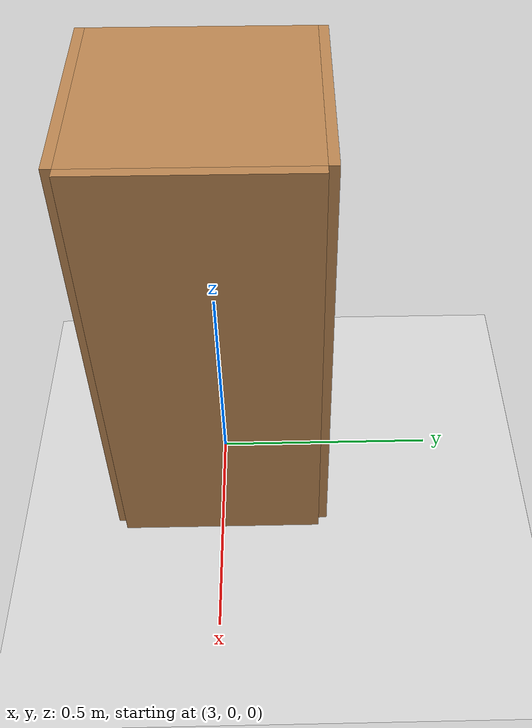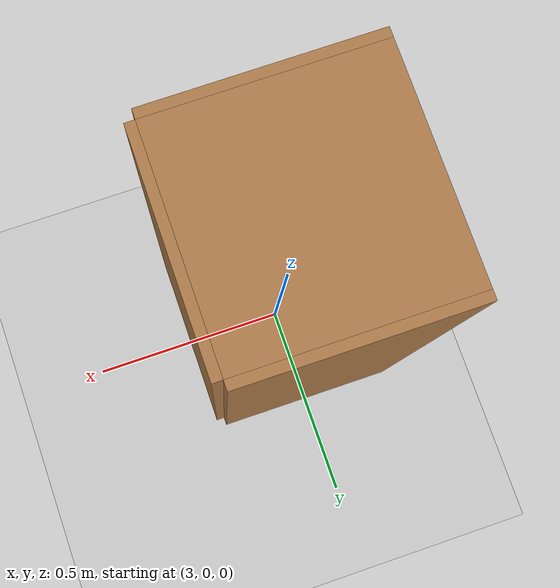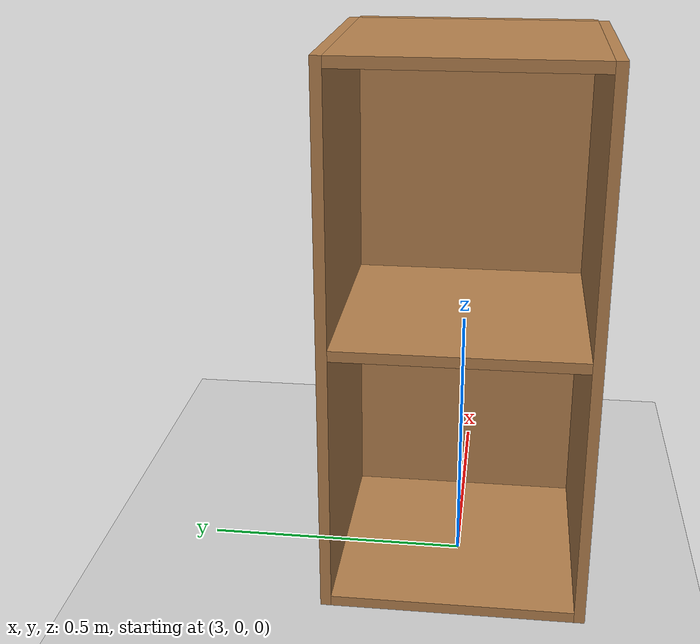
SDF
<?xml version="1.0" ?>
<sdf version="1.4">
  <world name="default">
    <physics type="ode">
      <gravity>0 0 -9.81</gravity>
      <ode>
        <solver>
          <type>quick</type>
          <iters>20</iters>
          <sor>1.0</sor>
        </solver>
        <constraints>
          <cfm>0.0</cfm>
          <erp>0.2</erp>
          <contact_max_correcting_vel>100.0</contact_max_correcting_vel>
          <contact_surface_layer>0.0</contact_surface_layer>
        </constraints>
      </ode>
      <real_time_update_rate>1000</real_time_update_rate>
      <max_step_size>0.001</max_step_size>
    </physics>
    <!-- A global light source -->
    <include>
      <uri>model://sun</uri>
    </include>
    <!-- A ground plane -->
    <include>
      <uri>model://ground_plane</uri>
    </include>
	<model name="cabinet_3">
      <static>1</static>
      <link name="cabinet_bottom_plate">
        <inertial>
          <pose>0.000000 0.000000 -1.000000 0.000000 0.000000 0.000</pose>
          <inertia>
            <ixx>2.050000</ixx>
            <ixy>0.000000</ixy>
            <ixz>0.000000</ixz>
            <iyy>2.050000</iyy>
            <iyz>0.000000</iyz>
            <izz>2.050000</izz>
          </inertia>
          <mass>25.000000</mass>
        </inertial>
        <collision name="cabinet_bottom_plate_geom">
          <pose>0.000000 0.000000 0.010000 0.000000 0.000000 0.000000</pose>
          <geometry>
            <box>
              <size>0.450000 0.450000 0.020000</size>
            </box>
          </geometry>
          <surface>
            <bounce />
            <friction>
              <ode />
            </friction>
            <contact>
              <ode />
            </contact>
          </surface>
          <max_contacts>10</max_contacts>
        </collision>
        <visual name="cabinet_bottom_plate_geom_visual">
          <pose>0.000000 0.000000 0.010000 0.000000 0.000000 0.000000</pose>
          <geometry>
            <box>
              <size>0.450000 0.450000 0.020000</size>
            </box>
          </geometry>
          <material>
            <script>
              <uri>file://media/materials/scripts/gazebo.material</uri>
              <name>Gazebo/Wood</name>
            </script>
          </material>
        </visual>
        <collision name="cabinet_bottom_plate_geom_cabinet_back_plate">
          <pose>0.235000 0.000000 0.510000 0.000000 0.000000 0.000000</pose>
          <geometry>
            <box>
              <size>0.020000 0.450000 1.020000</size>
            </box>
          </geometry>
          <surface>
            <bounce />
            <friction>
              <ode />
            </friction>
            <contact>
              <ode />
            </contact>
          </surface>
          <max_contacts>10</max_contacts>
        </collision>
        <visual name="cabinet_bottom_plate_geom_cabinet_back_plate_visual">
          <pose>0.235000 0.000000 0.510000 0.000000 0.000000 0.000000</pose>
          <geometry>
            <box>
              <size>0.020000 0.450000 1.020000</size>
            </box>
          </geometry>
          <material>
            <script>
              <uri>file://media/materials/scripts/gazebo.material</uri>
              <name>Gazebo/Wood</name>
            </script>
          </material>
        </visual>
        <collision name="cabinet_bottom_plate_geom_cabinet_left_plate">
          <pose>0.000000 0.235000 0.510000 0.000000 0.000000 0.000000</pose>
          <geometry>
            <box>
              <size>0.450000 0.020000 1.020000</size>
            </box>
          </geometry>
          <surface>
            <bounce />
            <friction>
              <ode />
            </friction>
            <contact>
              <ode />
            </contact>
          </surface>
          <max_contacts>10</max_contacts>
        </collision>
        <visual name="cabinet_bottom_plate_geom_cabinet_left_plate_visual">
          <pose>0.000000 0.235000 0.510000 0.000000 0.000000 0.000000</pose>
          <geometry>
            <box>
              <size>0.450000 0.020000 1.020000</size>
            </box>
          </geometry>
          <material>
            <script>
              <uri>file://media/materials/scripts/gazebo.material</uri>
              <name>Gazebo/Wood</name>
            </script>
          </material>
        </visual>
        <collision name="cabinet_bottom_plate_geom_cabinet_middle_plate">
          <pose>0.000000 0.000000 0.510000 0.000000 0.000000 0.000000</pose>
          <geometry>
            <box>
              <size>0.450000 0.450000 0.020000</size>
            </box>
          </geometry>
          <surface>
            <bounce />
            <friction>
              <ode />
            </friction>
            <contact>
              <ode />
            </contact>
          </surface>
          <max_contacts>10</max_contacts>
        </collision>
        <visual name="cabinet_bottom_plate_geom_cabinet_middle_plate_visual">
          <pose>0.000000 0.000000 0.510000 0.000000 0.000000 0.000000</pose>
          <geometry>
            <box>
              <size>0.450000 0.450000 0.020000</size>
            </box>
          </geometry>
          <material>
            <script>
              <uri>file://media/materials/scripts/gazebo.material</uri>
              <name>Gazebo/Wood</name>
            </script>
          </material>
        </visual>
        <collision name="cabinet_bottom_plate_geom_cabinet_right_plate">
          <pose>0.000000 -0.235000 0.510000 0.000000 0.000000 0.000000</pose>
          <geometry>
            <box>
              <size>0.450000 0.020000 1.020000</size>
            </box>
          </geometry>
          <surface>
            <bounce />
            <friction>
              <ode />
            </friction>
            <contact>
              <ode />
            </contact>
          </surface>
          <max_contacts>10</max_contacts>
        </collision>
        <visual name="cabinet_bottom_plate_geom_cabinet_right_plate_visual">
          <pose>0.000000 -0.235000 0.510000 0.000000 0.000000 0.000000</pose>
          <geometry>
            <box>
              <size>0.450000 0.020000 1.020000</size>
            </box>
          </geometry>
          <material>
            <script>
              <uri>file://media/materials/scripts/gazebo.material</uri>
              <name>Gazebo/Wood</name>
            </script>
          </material>
        </visual>
        <collision name="cabinet_bottom_plate_geom_cabinet_top_plate">
          <pose>0.000000 0.000000 1.010000 0.000000 0.000000 0.000000</pose>
          <geometry>
            <box>
              <size>0.450000 0.450000 0.020000</size>
            </box>
          </geometry>
          <surface>
            <bounce />
            <friction>
              <ode />
            </friction>
            <contact>
              <ode />
            </contact>
          </surface>
          <max_contacts>10</max_contacts>
        </collision>
        <visual name="cabinet_bottom_plate_geom_cabinet_top_plate_visual">
          <pose>0.000000 0.000000 1.010000 0.000000 0.000000 0.000000</pose>
          <geometry>
            <box>
              <size>0.450000 0.450000 0.020000</size>
            </box>
          </geometry>
          <material>
            <script>
              <uri>file://media/materials/scripts/gazebo.material</uri>
              <name>Gazebo/Wood</name>
            </script>
          </material>
        </visual>
        <velocity_decay>
          <linear>0.000000</linear>
          <angular>0.000000</angular>
        </velocity_decay>
        <self_collide>0</self_collide>
        <kinematic>0</kinematic>
        <gravity>1</gravity>
      </link>
      <pose>3.0 0.0 0.0 0.0 0.0 0.0</pose>
    </model>
  </world>
</sdf>
